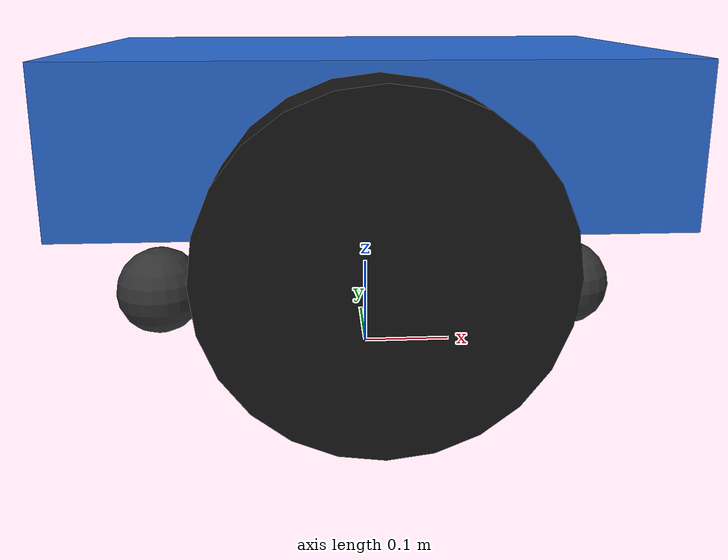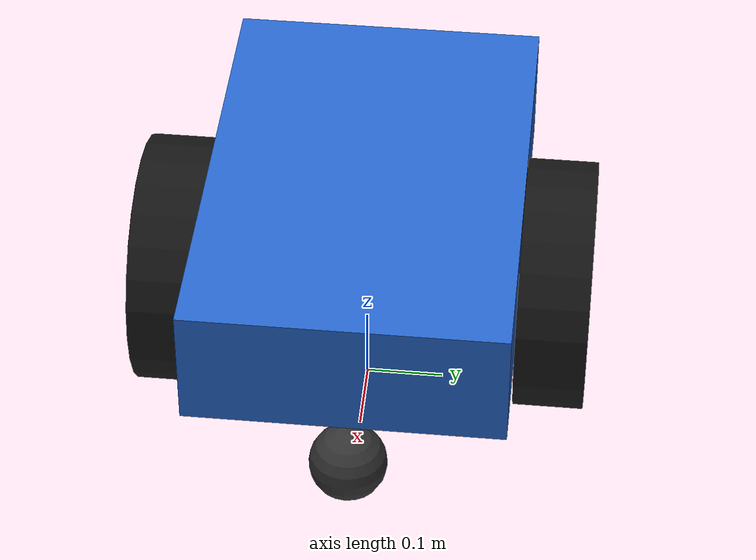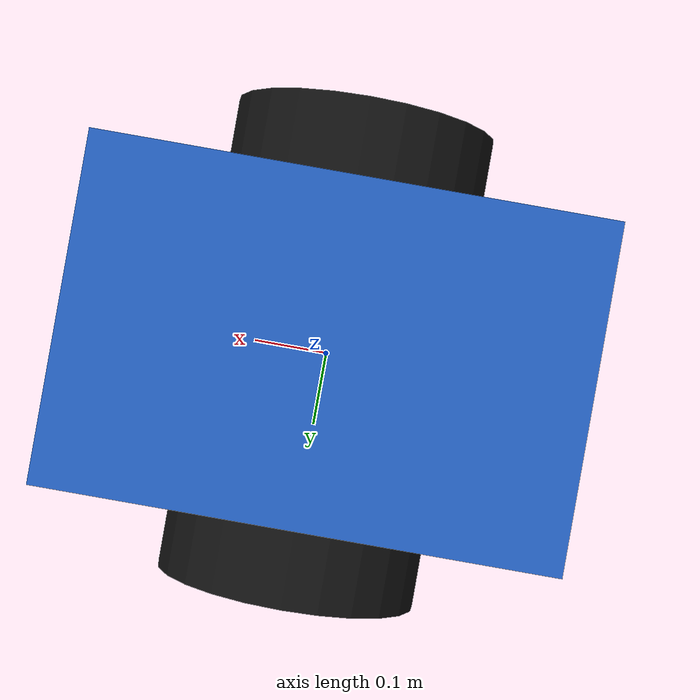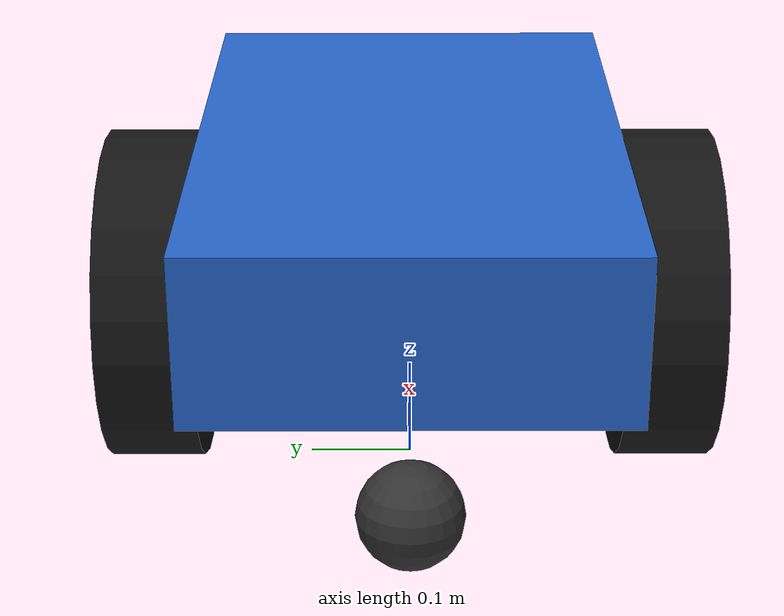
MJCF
<mujoco model="MoonSim reference differential drive rover">
  <compiler angle="radian"/>
  <option timestep="0.002" gravity="0 0 -9.81" iterations="50"/>
  <asset/>
  <default><geom friction="1 .02 .002" condim="3" group="2"/><joint damping=".15"/></default>
  <worldbody>
    <body name="base_link" pos="0 0 .27">
      <freejoint name="root"/>
      <geom name="chassis" type="box" size=".30 .20 .08" mass="12" rgba=".15 .4 .8 1"/>
      <body name="left_wheel" pos="0 .245 -.09">
        <joint name="left_axle" axis="0 1 0"/>
        <geom name="left_tire" type="cylinder" size=".16 .045" quat=".70710678 .70710678 0 0" mass="1" rgba=".08 .08 .08 1"/>
      </body>
      <body name="right_wheel" pos="0 -.245 -.09">
        <joint name="right_axle" axis="0 1 0"/>
        <geom name="right_tire" type="cylinder" size=".16 .045" quat=".70710678 .70710678 0 0" mass="1" rgba=".08 .08 .08 1"/>
      </body>
      <geom name="front_caster" type="sphere" pos=".24 0 -.20" size=".05" mass=".1" friction=".02 .001 .0001" rgba=".2 .2 .2 1"/>
      <geom name="rear_caster" type="sphere" pos="-.24 0 -.20" size=".05" mass=".1" friction=".02 .001 .0001" rgba=".2 .2 .2 1"/>
    </body>
  </worldbody>
  <actuator>
    <velocity name="left_drive" joint="left_axle" kv="8" ctrlrange="-8 8" forcerange="-12 12"/>
    <velocity name="right_drive" joint="right_axle" kv="8" ctrlrange="-8 8" forcerange="-12 12"/>
  </actuator>
</mujoco>
